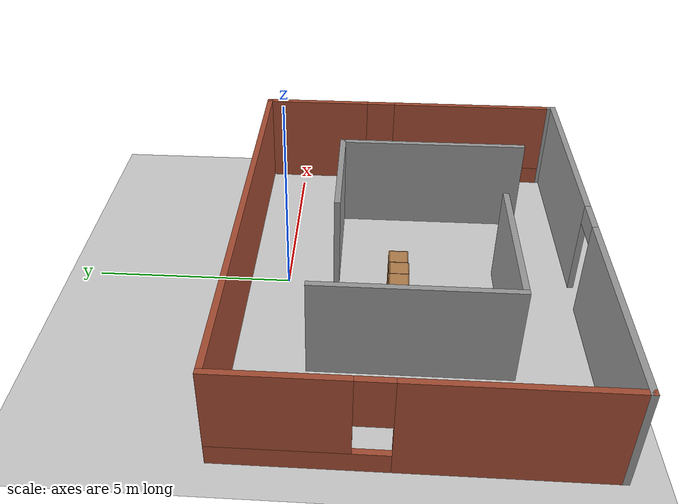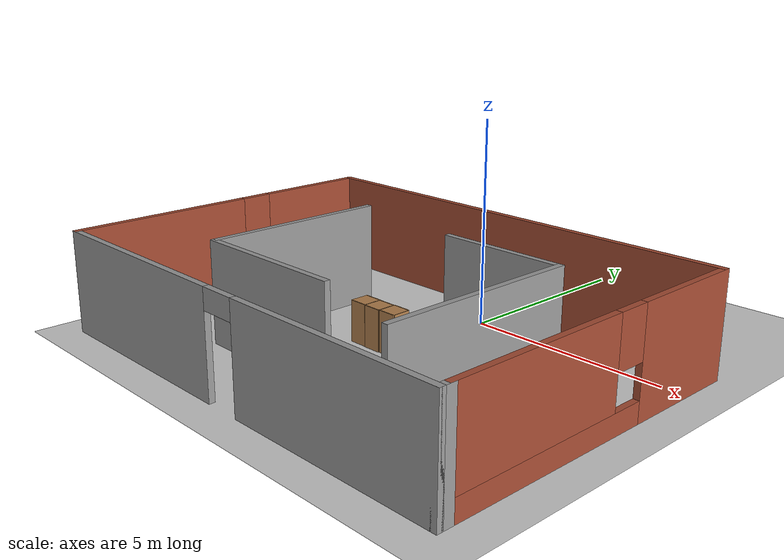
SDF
<sdf version="1.6">
 <world name="default">
  <light name="sun" type="directional">
   <pose>0 0 10 0 -0 0</pose>
   <diffuse>0.8 0.8 0.8 1</diffuse>
   <specular>0.2 0.2 0.2 1</specular>
   <attenuation>
    <range>1000</range>
    <constant>0.9</constant>
    <linear>0.01</linear>
    <quadratic>0.001</quadratic>
   </attenuation>
   <direction>-0.5 0.1 -0.9</direction>
  </light>
  <model name="ground_plane">
   <static>1</static>
   <link name="link">
    <collision name="collision">
     <geometry><plane><normal>0 0 1</normal><size>100 100</size></plane></geometry>
     <surface><friction><ode><mu>100</mu><mu2>50</mu2></ode></friction></surface>
    </collision>
    <visual name="visual">
     <cast_shadows>0</cast_shadows>
     <geometry><plane><normal>0 0 1</normal><size>100 100</size></plane></geometry>
     <material>
      <script><uri>file://media/materials/scripts/gazebo.material</uri><name>Gazebo/Grey</name></script>
     </material>
    </visual>
   </link>
  </model>
  <gravity>0 0 -9.8</gravity>
  <magnetic_field>6e-06 2.3e-05 -4.2e-05</magnetic_field>
  <atmosphere type="adiabatic"/>
  <physics name="default_physics" default="0" type="ode">
   <max_step_size>0.001</max_step_size>
   <real_time_factor>1</real_time_factor>
   <real_time_update_rate>1000</real_time_update_rate>
  </physics>
  <scene><ambient>0.4 0.4 0.4 1</ambient><background>0.7 0.7 0.7 1</background><shadows>1</shadows></scene>
  <spherical_coordinates>
   <surface_model>EARTH_WGS84</surface_model>
   <latitude_deg>0</latitude_deg>
   <longitude_deg>0</longitude_deg>
   <elevation>0</elevation>
   <heading_deg>0</heading_deg>
  </spherical_coordinates>
  <model name="small_world">
   <pose>-0.242833 -3.11705 0 0 -0 0</pose>
   <link name="Wall_1">
    <pose>-5.8 0 0 0 -0 1.5708</pose>
    <visual name="Wall_1_Visual_0">
     <pose>-1.89126 0 1.25 0 -0 0</pose>
     <geometry><box><size>4.71747 0.15 2.5</size></box></geometry>
     <material>
      <script><uri>file://media/materials/scripts/gazebo.material</uri><name>Gazebo/Bricks</name></script>
      <ambient>1 1 1 1</ambient>
     </material>
     <meta><layer>0</layer></meta>
    </visual>
    <collision name="Wall_1_Collision_0">
     <geometry><box><size>4.71747 0.15 2.5</size></box></geometry>
     <pose>-1.89126 0 1.25 0 -0 0</pose>
    </collision>
    <visual name="Wall_1_Visual_1">
     <pose>2.35874 0 0.25 0 -0 0</pose>
     <geometry><box><size>3.78253 0.15 0.5</size></box></geometry>
     <material>
      <script><uri>file://media/materials/scripts/gazebo.material</uri><name>Gazebo/Bricks</name></script>
      <ambient>1 1 1 1</ambient>
     </material>
     <meta><layer>0</layer></meta>
    </visual>
    <collision name="Wall_1_Collision_1">
     <geometry><box><size>3.78253 0.15 0.5</size></box></geometry>
     <pose>2.35874 0 0.25 0 -0 0</pose>
    </collision>
    <visual name="Wall_1_Visual_2">
     <pose>2.75874 0 1.5 0 -0 0</pose>
     <geometry><box><size>2.98253 0.15 2</size></box></geometry>
     <material>
      <script><uri>file://media/materials/scripts/gazebo.material</uri><name>Gazebo/Bricks</name></script>
      <ambient>1 1 1 1</ambient>
     </material>
     <meta><layer>0</layer></meta>
    </visual>
    <collision name="Wall_1_Collision_2">
     <geometry><box><size>2.98253 0.15 2</size></box></geometry>
     <pose>2.75874 0 1.5 0 -0 0</pose>
    </collision>
    <visual name="Wall_1_Visual_3">
     <pose>0.867472 0 1.9 0 -0 0</pose>
     <geometry><box><size>0.8 0.15 1.2</size></box></geometry>
     <material>
      <script><uri>file://media/materials/scripts/gazebo.material</uri><name>Gazebo/Bricks</name></script>
      <ambient>1 1 1 1</ambient>
     </material>
     <meta><layer>0</layer></meta>
    </visual>
    <collision name="Wall_1_Collision_3">
     <geometry><box><size>0.8 0.15 1.2</size></box></geometry>
     <pose>0.867472 0 1.9 0 -0 0</pose>
    </collision>
   </link>
   <link name="Wall_14">
    <pose>0 -4.175 0 0 -0 0</pose>
    <visual name="Wall_14_Visual_0">
     <pose>-3.16341 0 1.25 0 -0 0</pose>
     <geometry><box><size>5.42318 0.15 2.5</size></box></geometry>
     <material>
      <script><uri>file://media/materials/scripts/gazebo.material</uri><name>Gazebo/Grey</name></script>
      <ambient>1 1 1 1</ambient>
     </material>
     <meta><layer>0</layer></meta>
    </visual>
    <collision name="Wall_14_Collision_0">
     <geometry><box><size>5.42318 0.15 2.5</size></box></geometry>
     <pose>-3.16341 0 1.25 0 -0 0</pose>
    </collision>
    <visual name="Wall_14_Visual_1">
     <pose>3.16159 0 1.25 0 -0 0</pose>
     <geometry><box><size>5.42682 0.15 2.5</size></box></geometry>
     <material>
      <script><uri>file://media/materials/scripts/gazebo.material</uri><name>Gazebo/Grey</name></script>
      <ambient>1 1 1 1</ambient>
     </material>
     <meta><layer>0</layer></meta>
    </visual>
    <collision name="Wall_14_Collision_1">
     <geometry><box><size>5.42682 0.15 2.5</size></box></geometry>
     <pose>3.16159 0 1.25 0 -0 0</pose>
    </collision>
    <visual name="Wall_14_Visual_2">
     <pose>-0.00182 0 2.25 0 -0 0</pose>
     <geometry><box><size>0.9 0.15 0.5</size></box></geometry>
     <material>
      <script><uri>file://media/materials/scripts/gazebo.material</uri><name>Gazebo/Grey</name></script>
      <ambient>1 1 1 1</ambient>
     </material>
     <meta><layer>0</layer></meta>
    </visual>
    <collision name="Wall_14_Collision_2">
     <geometry><box><size>0.9 0.15 0.5</size></box></geometry>
     <pose>-0.00182 0 2.25 0 -0 0</pose>
    </collision>
   </link>
   <link name="Wall_15">
    <collision name="Wall_15_Collision">
     <geometry><box><size>0.4 0.15 2.5</size></box></geometry>
     <pose>0 0 1.25 0 -0 0</pose>
    </collision>
    <visual name="Wall_15_Visual">
     <pose>0 0 1.25 0 -0 0</pose>
     <geometry><box><size>0.4 0.15 2.5</size></box></geometry>
     <material>
      <script><uri>file://media/materials/scripts/gazebo.material</uri><name>Gazebo/Grey</name></script>
      <ambient>1 1 1 1</ambient>
     </material>
     <meta><layer>0</layer></meta>
    </visual>
    <pose>5.8 -4.05 0 0 -0 1.5708</pose>
   </link>
   <link name="Wall_17">
    <collision name="Wall_17_Collision">
     <geometry><box><size>4.75 0.15 2.5</size></box></geometry>
     <pose>0 0 1.25 0 -0 0</pose>
    </collision>
    <visual name="Wall_17_Visual">
     <pose>0 0 1.25 0 -0 0</pose>
     <geometry><box><size>4.75 0.15 2.5</size></box></geometry>
     <material>
      <script><uri>file://media/materials/scripts/gazebo.material</uri><name>Gazebo/Grey</name></script>
      <ambient>1 1 1 1</ambient>
     </material>
     <meta><layer>0</layer></meta>
    </visual>
    <pose>-3.00764 0.033564 0 0 0 -1.5708</pose>
   </link>
   <link name="Wall_18">
    <collision name="Wall_18_Collision">
     <geometry><box><size>4 0.15 2.5</size></box></geometry>
     <pose>0 0 1.25 0 -0 0</pose>
    </collision>
    <visual name="Wall_18_Visual">
     <pose>0 0 1.25 0 -0 0</pose>
     <geometry><box><size>4 0.15 2.5</size></box></geometry>
     <material>
      <script><uri>file://media/materials/scripts/gazebo.material</uri><name>Gazebo/Grey</name></script>
      <ambient>1 1 1 1</ambient>
     </material>
     <meta><layer>0</layer></meta>
    </visual>
    <pose>-1.08264 -2.26644 0 0 -0 0</pose>
   </link>
   <link name="Wall_2">
    <collision name="Wall_2_Collision">
     <geometry><box><size>11.75 0.15 2.5</size></box></geometry>
     <pose>0 0 1.25 0 -0 0</pose>
    </collision>
    <visual name="Wall_2_Visual">
     <pose>0 0 1.25 0 -0 0</pose>
     <geometry><box><size>11.75 0.15 2.5</size></box></geometry>
     <material>
      <script><uri>file://media/materials/scripts/gazebo.material</uri><name>Gazebo/Bricks</name></script>
      <ambient>1 1 1 1</ambient>
     </material>
     <meta><layer>0</layer></meta>
    </visual>
    <pose>0 4.175 0 0 -0 0</pose>
   </link>
   <link name="Wall_20">
    <collision name="Wall_20_Collision">
     <geometry><box><size>3.25 0.15 2.5</size></box></geometry>
     <pose>0 0 1.25 0 -0 0</pose>
    </collision>
    <visual name="Wall_20_Visual">
     <pose>0 0 1.25 0 -0 0</pose>
     <geometry><box><size>3.25 0.15 2.5</size></box></geometry>
     <material>
      <script><uri>file://media/materials/scripts/gazebo.material</uri><name>Gazebo/Grey</name></script>
      <ambient>1 1 1 1</ambient>
     </material>
     <meta><layer>0</layer></meta>
    </visual>
    <pose>1.84078 1.88136 0 0 -0 0</pose>
   </link>
   <link name="Wall_23">
    <collision name="Wall_23_Collision">
     <geometry><box><size>5 0.15 2.5</size></box></geometry>
     <pose>0 0 1.25 0 -0 0</pose>
    </collision>
    <visual name="Wall_23_Visual">
     <pose>0 0 1.25 0 -0 0</pose>
     <geometry><box><size>5 0.15 2.5</size></box></geometry>
     <material>
      <script><uri>file://media/materials/scripts/gazebo.material</uri><name>Gazebo/Grey</name></script>
      <ambient>1 1 1 1</ambient>
     </material>
     <meta><layer>0</layer></meta>
    </visual>
    <pose>3.39078 -0.54364 0 0 0 -1.5708</pose>
   </link>
   <link name="Wall_3">
    <pose>5.8 0.125 0 0 0 -1.5708</pose>
    <visual name="Wall_3_Visual_0">
     <pose>-2.63374 0 1.25 0 -0 0</pose>
     <geometry><box><size>2.98253 0.15 2.5</size></box></geometry>
     <material>
      <script><uri>file://media/materials/scripts/gazebo.material</uri><name>Gazebo/Bricks</name></script>
      <ambient>1 1 1 1</ambient>
     </material>
     <meta><layer>0</layer></meta>
    </visual>
    <collision name="Wall_3_Collision_0">
     <geometry><box><size>2.98253 0.15 2.5</size></box></geometry>
     <pose>-2.63374 0 1.25 0 -0 0</pose>
    </collision>
    <visual name="Wall_3_Visual_1">
     <pose>1.49126 0 0.25 0 -0 0</pose>
     <geometry><box><size>5.26747 0.15 0.5</size></box></geometry>
     <material>
      <script><uri>file://media/materials/scripts/gazebo.material</uri><name>Gazebo/Bricks</name></script>
      <ambient>1 1 1 1</ambient>
     </material>
     <meta><layer>0</layer></meta>
    </visual>
    <collision name="Wall_3_Collision_1">
     <geometry><box><size>5.26747 0.15 0.5</size></box></geometry>
     <pose>1.49126 0 0.25 0 -0 0</pose>
    </collision>
    <visual name="Wall_3_Visual_2">
     <pose>1.89126 0 1.5 0 -0 0</pose>
     <geometry><box><size>4.46747 0.15 2</size></box></geometry>
     <material>
      <script><uri>file://media/materials/scripts/gazebo.material</uri><name>Gazebo/Bricks</name></script>
      <ambient>1 1 1 1</ambient>
     </material>
     <meta><layer>0</layer></meta>
    </visual>
    <collision name="Wall_3_Collision_2">
     <geometry><box><size>4.46747 0.15 2</size></box></geometry>
     <pose>1.89126 0 1.5 0 -0 0</pose>
    </collision>
    <visual name="Wall_3_Visual_3">
     <pose>-0.742472 0 1.9 0 -0 0</pose>
     <geometry><box><size>0.8 0.15 1.2</size></box></geometry>
     <material>
      <script><uri>file://media/materials/scripts/gazebo.material</uri><name>Gazebo/Bricks</name></script>
      <ambient>1 1 1 1</ambient>
     </material>
     <meta><layer>0</layer></meta>
    </visual>
    <collision name="Wall_3_Collision_3">
     <geometry><box><size>0.8 0.15 1.2</size></box></geometry>
     <pose>-0.742472 0 1.9 0 -0 0</pose>
    </collision>
   </link>
   <static>1</static>
  </model>
  <model name="cabinet">
   <static>1</static>
   <link name="cabinet_bottom_plate">
    <inertial>
     <pose>0 0 -1 0 -0 0</pose>
     <inertia><ixx>2.05</ixx><ixy>0</ixy><ixz>0</ixz><iyy>2.05</iyy><iyz>0</iyz><izz>2.05</izz></inertia>
     <mass>25</mass>
    </inertial>
    <collision name="cabinet_bottom_plate_geom">
     <pose>0 0 0.01 0 -0 0</pose>
     <geometry><box><size>0.45 0.45 0.02</size></box></geometry>
    </collision>
    <visual name="cabinet_bottom_plate_geom_visual">
     <pose>0 0 0.01 0 -0 0</pose>
     <geometry><box><size>0.45 0.45 0.02</size></box></geometry>
     <material>
      <script><uri>file://media/materials/scripts/gazebo.material</uri><name>Gazebo/Wood</name></script>
     </material>
    </visual>
    <collision name="cabinet_bottom_plate_geom_cabinet_back_plate">
     <pose>0.235 0 0.51 0 -0 0</pose>
     <geometry><box><size>0.02 0.45 1.02</size></box></geometry>
    </collision>
    <visual name="cabinet_bottom_plate_geom_cabinet_back_plate_visual">
     <pose>0.235 0 0.51 0 -0 0</pose>
     <geometry><box><size>0.02 0.45 1.02</size></box></geometry>
     <material>
      <script><uri>file://media/materials/scripts/gazebo.material</uri><name>Gazebo/Wood</name></script>
     </material>
    </visual>
    <collision name="cabinet_bottom_plate_geom_cabinet_left_plate">
     <pose>0 0.235 0.51 0 -0 0</pose>
     <geometry><box><size>0.45 0.02 1.02</size></box></geometry>
    </collision>
    <visual name="cabinet_bottom_plate_geom_cabinet_left_plate_visual">
     <pose>0 0.235 0.51 0 -0 0</pose>
     <geometry><box><size>0.45 0.02 1.02</size></box></geometry>
     <material>
      <script><uri>file://media/materials/scripts/gazebo.material</uri><name>Gazebo/Wood</name></script>
     </material>
    </visual>
    <collision name="cabinet_bottom_plate_geom_cabinet_middle_plate">
     <pose>0 0 0.51 0 -0 0</pose>
     <geometry><box><size>0.45 0.45 0.02</size></box></geometry>
    </collision>
    <visual name="cabinet_bottom_plate_geom_cabinet_middle_plate_visual">
     <pose>0 0 0.51 0 -0 0</pose>
     <geometry><box><size>0.45 0.45 0.02</size></box></geometry>
     <material>
      <script><uri>file://media/materials/scripts/gazebo.material</uri><name>Gazebo/Wood</name></script>
     </material>
    </visual>
    <collision name="cabinet_bottom_plate_geom_cabinet_right_plate">
     <pose>0 -0.235 0.51 0 -0 0</pose>
     <geometry><box><size>0.45 0.02 1.02</size></box></geometry>
    </collision>
    <visual name="cabinet_bottom_plate_geom_cabinet_right_plate_visual">
     <pose>0 -0.235 0.51 0 -0 0</pose>
     <geometry><box><size>0.45 0.02 1.02</size></box></geometry>
     <material>
      <script><uri>file://media/materials/scripts/gazebo.material</uri><name>Gazebo/Wood</name></script>
     </material>
    </visual>
    <collision name="cabinet_bottom_plate_geom_cabinet_top_plate">
     <pose>0 0 1.01 0 -0 0</pose>
     <geometry><box><size>0.45 0.45 0.02</size></box></geometry>
    </collision>
    <visual name="cabinet_bottom_plate_geom_cabinet_top_plate_visual">
     <pose>0 0 1.01 0 -0 0</pose>
     <geometry><box><size>0.45 0.45 0.02</size></box></geometry>
     <material>
      <script><uri>file://media/materials/scripts/gazebo.material</uri><name>Gazebo/Wood</name></script>
     </material>
    </visual>
   </link>
   <pose>-1.06929 -2.80398 0 0 -0 0</pose>
  </model>
  <model name="cabinet_0">
   <static>1</static>
   <link name="cabinet_bottom_plate">
    <inertial>
     <pose>0 0 -1 0 -0 0</pose>
     <inertia><ixx>2.05</ixx><ixy>0</ixy><ixz>0</ixz><iyy>2.05</iyy><iyz>0</iyz><izz>2.05</izz></inertia>
     <mass>25</mass>
    </inertial>
    <collision name="cabinet_bottom_plate_geom">
     <pose>0 0 0.01 0 -0 0</pose>
     <geometry><box><size>0.45 0.45 0.02</size></box></geometry>
    </collision>
    <visual name="cabinet_bottom_plate_geom_visual">
     <pose>0 0 0.01 0 -0 0</pose>
     <geometry><box><size>0.45 0.45 0.02</size></box></geometry>
     <material>
      <script><uri>file://media/materials/scripts/gazebo.material</uri><name>Gazebo/Wood</name></script>
     </material>
    </visual>
    <collision name="cabinet_bottom_plate_geom_cabinet_back_plate">
     <pose>0.235 0 0.51 0 -0 0</pose>
     <geometry><box><size>0.02 0.45 1.02</size></box></geometry>
    </collision>
    <visual name="cabinet_bottom_plate_geom_cabinet_back_plate_visual">
     <pose>0.235 0 0.51 0 -0 0</pose>
     <geometry><box><size>0.02 0.45 1.02</size></box></geometry>
     <material>
      <script><uri>file://media/materials/scripts/gazebo.material</uri><name>Gazebo/Wood</name></script>
     </material>
    </visual>
    <collision name="cabinet_bottom_plate_geom_cabinet_left_plate">
     <pose>0 0.235 0.51 0 -0 0</pose>
     <geometry><box><size>0.45 0.02 1.02</size></box></geometry>
    </collision>
    <visual name="cabinet_bottom_plate_geom_cabinet_left_plate_visual">
     <pose>0 0.235 0.51 0 -0 0</pose>
     <geometry><box><size>0.45 0.02 1.02</size></box></geometry>
     <material>
      <script><uri>file://media/materials/scripts/gazebo.material</uri><name>Gazebo/Wood</name></script>
     </material>
    </visual>
    <collision name="cabinet_bottom_plate_geom_cabinet_middle_plate">
     <pose>0 0 0.51 0 -0 0</pose>
     <geometry><box><size>0.45 0.45 0.02</size></box></geometry>
    </collision>
    <visual name="cabinet_bottom_plate_geom_cabinet_middle_plate_visual">
     <pose>0 0 0.51 0 -0 0</pose>
     <geometry><box><size>0.45 0.45 0.02</size></box></geometry>
     <material>
      <script><uri>file://media/materials/scripts/gazebo.material</uri><name>Gazebo/Wood</name></script>
     </material>
    </visual>
    <collision name="cabinet_bottom_plate_geom_cabinet_right_plate">
     <pose>0 -0.235 0.51 0 -0 0</pose>
     <geometry><box><size>0.45 0.02 1.02</size></box></geometry>
    </collision>
    <visual name="cabinet_bottom_plate_geom_cabinet_right_plate_visual">
     <pose>0 -0.235 0.51 0 -0 0</pose>
     <geometry><box><size>0.45 0.02 1.02</size></box></geometry>
     <material>
      <script><uri>file://media/materials/scripts/gazebo.material</uri><name>Gazebo/Wood</name></script>
     </material>
    </visual>
    <collision name="cabinet_bottom_plate_geom_cabinet_top_plate">
     <pose>0 0 1.01 0 -0 0</pose>
     <geometry><box><size>0.45 0.45 0.02</size></box></geometry>
    </collision>
    <visual name="cabinet_bottom_plate_geom_cabinet_top_plate_visual">
     <pose>0 0 1.01 0 -0 0</pose>
     <geometry><box><size>0.45 0.45 0.02</size></box></geometry>
     <material>
      <script><uri>file://media/materials/scripts/gazebo.material</uri><name>Gazebo/Wood</name></script>
     </material>
    </visual>
   </link>
   <pose>-0.603994 -2.81372 0 0 -0 0</pose>
  </model>
  <model name="cabinet_1">
   <static>1</static>
   <link name="cabinet_bottom_plate">
    <inertial>
     <pose>0 0 -1 0 -0 0</pose>
     <inertia><ixx>2.05</ixx><ixy>0</ixy><ixz>0</ixz><iyy>2.05</iyy><iyz>0</iyz><izz>2.05</izz></inertia>
     <mass>25</mass>
    </inertial>
    <collision name="cabinet_bottom_plate_geom">
     <pose>0 0 0.01 0 -0 0</pose>
     <geometry><box><size>0.45 0.45 0.02</size></box></geometry>
    </collision>
    <visual name="cabinet_bottom_plate_geom_visual">
     <pose>0 0 0.01 0 -0 0</pose>
     <geometry><box><size>0.45 0.45 0.02</size></box></geometry>
     <material>
      <script><uri>file://media/materials/scripts/gazebo.material</uri><name>Gazebo/Wood</name></script>
     </material>
    </visual>
    <collision name="cabinet_bottom_plate_geom_cabinet_back_plate">
     <pose>0.235 0 0.51 0 -0 0</pose>
     <geometry><box><size>0.02 0.45 1.02</size></box></geometry>
    </collision>
    <visual name="cabinet_bottom_plate_geom_cabinet_back_plate_visual">
     <pose>0.235 0 0.51 0 -0 0</pose>
     <geometry><box><size>0.02 0.45 1.02</size></box></geometry>
     <material>
      <script><uri>file://media/materials/scripts/gazebo.material</uri><name>Gazebo/Wood</name></script>
     </material>
    </visual>
    <collision name="cabinet_bottom_plate_geom_cabinet_left_plate">
     <pose>0 0.235 0.51 0 -0 0</pose>
     <geometry><box><size>0.45 0.02 1.02</size></box></geometry>
    </collision>
    <visual name="cabinet_bottom_plate_geom_cabinet_left_plate_visual">
     <pose>0 0.235 0.51 0 -0 0</pose>
     <geometry><box><size>0.45 0.02 1.02</size></box></geometry>
     <material>
      <script><uri>file://media/materials/scripts/gazebo.material</uri><name>Gazebo/Wood</name></script>
     </material>
    </visual>
    <collision name="cabinet_bottom_plate_geom_cabinet_middle_plate">
     <pose>0 0 0.51 0 -0 0</pose>
     <geometry><box><size>0.45 0.45 0.02</size></box></geometry>
    </collision>
    <visual name="cabinet_bottom_plate_geom_cabinet_middle_plate_visual">
     <pose>0 0 0.51 0 -0 0</pose>
     <geometry><box><size>0.45 0.45 0.02</size></box></geometry>
     <material>
      <script><uri>file://media/materials/scripts/gazebo.material</uri><name>Gazebo/Wood</name></script>
     </material>
    </visual>
    <collision name="cabinet_bottom_plate_geom_cabinet_right_plate">
     <pose>0 -0.235 0.51 0 -0 0</pose>
     <geometry><box><size>0.45 0.02 1.02</size></box></geometry>
    </collision>
    <visual name="cabinet_bottom_plate_geom_cabinet_right_plate_visual">
     <pose>0 -0.235 0.51 0 -0 0</pose>
     <geometry><box><size>0.45 0.02 1.02</size></box></geometry>
     <material>
      <script><uri>file://media/materials/scripts/gazebo.material</uri><name>Gazebo/Wood</name></script>
     </material>
    </visual>
    <collision name="cabinet_bottom_plate_geom_cabinet_top_plate">
     <pose>0 0 1.01 0 -0 0</pose>
     <geometry><box><size>0.45 0.45 0.02</size></box></geometry>
    </collision>
    <visual name="cabinet_bottom_plate_geom_cabinet_top_plate_visual">
     <pose>0 0 1.01 0 -0 0</pose>
     <geometry><box><size>0.45 0.45 0.02</size></box></geometry>
     <material>
      <script><uri>file://media/materials/scripts/gazebo.material</uri><name>Gazebo/Wood</name></script>
     </material>
    </visual>
   </link>
   <pose>-0.130588 -2.79688 0 0 -0 0</pose>
  </model>
 </world>
</sdf>
